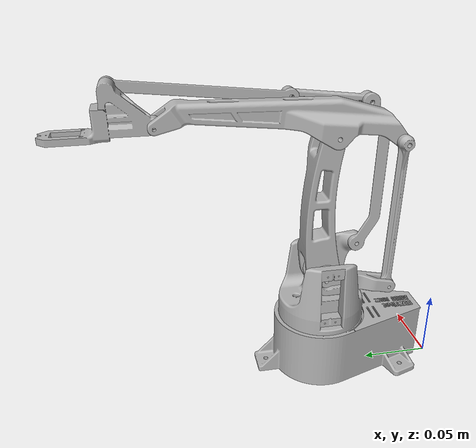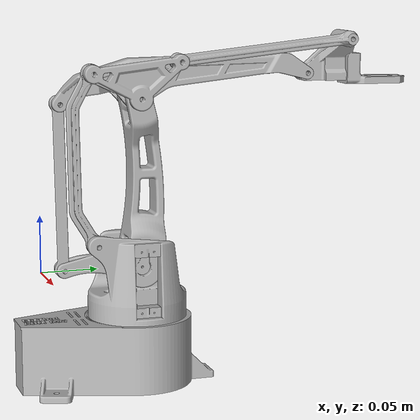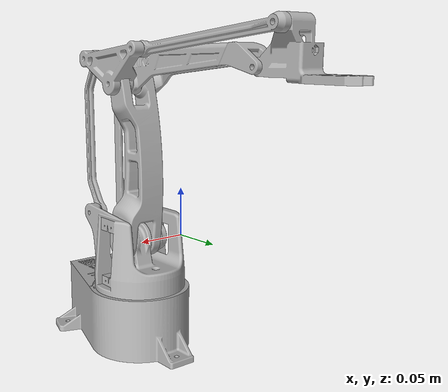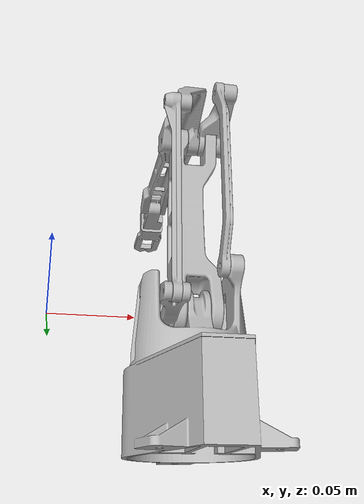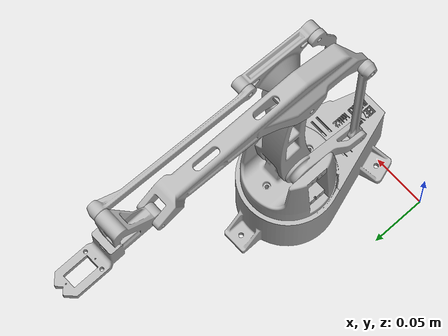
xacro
<?xml version="1.0" ?>
<robot name="RoboEEZYMK2" xmlns:xacro="http://www.ros.org/wiki/xacro">

<xacro:include filename="$(find RoboEEZYMK2_description)/urdf/materials.xacro" />
<xacro:include filename="$(find RoboEEZYMK2_description)/urdf/RoboEEZYMK2.trans" />
<xacro:include filename="$(find RoboEEZYMK2_description)/urdf/RoboEEZYMK2.gazebo" />
<link name="base_link">
  <inertial>
    <origin xyz="0.0949468352036693 0.03432660616485749 -0.04272571120106464" rpy="0 0 0"/>
    <mass value="1.0562548611466858"/>
    <inertia ixx="0.002379" iyy="0.001016" izz="0.002647" ixy="-0.0" iyz="-0.000228" ixz="0.0"/>
  </inertial>
  <visual>
    <origin xyz="0 0 0" rpy="0 0 0"/>
    <geometry>
      <mesh filename="package://RoboEEZYMK2_description/meshes/base_link.stl" scale="0.001 0.001 0.001"/>
    </geometry>
    <material name="silver"/>
  </visual>
  <collision>
    <origin xyz="0 0 0" rpy="0 0 0"/>
    <geometry>
      <mesh filename="package://RoboEEZYMK2_description/meshes/base_link.stl" scale="0.001 0.001 0.001"/>
    </geometry>
  </collision>
</link>

<link name="link_1_1">
  <inertial>
    <origin xyz="0.0011594949209605965 -0.0008907057001873442 0.02046169652517188" rpy="0 0 0"/>
    <mass value="1.1319854911225824"/>
    <inertia ixx="0.000768" iyy="0.00081" izz="0.000895" ixy="2.2e-05" iyz="3.7e-05" ixz="-3.7e-05"/>
  </inertial>
  <visual>
    <origin xyz="-0.094964 -0.059514 0.018538" rpy="0 0 0"/>
    <geometry>
      <mesh filename="package://RoboEEZYMK2_description/meshes/link_1_1.stl" scale="0.001 0.001 0.001"/>
    </geometry>
    <material name="silver"/>
  </visual>
  <collision>
    <origin xyz="-0.094964 -0.059514 0.018538" rpy="0 0 0"/>
    <geometry>
      <mesh filename="package://RoboEEZYMK2_description/meshes/link_1_1.stl" scale="0.001 0.001 0.001"/>
    </geometry>
  </collision>
</link>

<link name="link_2_1">
  <inertial>
    <origin xyz="-0.002295545362061238 0.00376516736121716 0.05910658412541171" rpy="0 0 0"/>
    <mass value="0.5263133802587702"/>
    <inertia ixx="0.001153" iyy="0.001167" izz="9.3e-05" ixy="2e-06" iyz="7e-06" ixz="6e-06"/>
  </inertial>
  <visual>
    <origin xyz="-0.099964 -0.05958 -0.024464" rpy="0 0 0"/>
    <geometry>
      <mesh filename="package://RoboEEZYMK2_description/meshes/link_2_1.stl" scale="0.001 0.001 0.001"/>
    </geometry>
    <material name="silver"/>
  </visual>
  <collision>
    <origin xyz="-0.099964 -0.05958 -0.024464" rpy="0 0 0"/>
    <geometry>
      <mesh filename="package://RoboEEZYMK2_description/meshes/link_2_1.stl" scale="0.001 0.001 0.001"/>
    </geometry>
  </collision>
</link>

<link name="link_3_1">
  <inertial>
    <origin xyz="0.0010380580983578303 0.035238918667005764 0.016176972781156457" rpy="0 0 0"/>
    <mass value="0.30760850779314325"/>
    <inertia ixx="0.0011" iyy="5.4e-05" izz="0.001087" ixy="-3.4e-05" iyz="-0.000102" ixz="-7e-06"/>
  </inertial>
  <visual>
    <origin xyz="-0.089088 -0.057436 -0.159445" rpy="0 0 0"/>
    <geometry>
      <mesh filename="package://RoboEEZYMK2_description/meshes/link_3_1.stl" scale="0.001 0.001 0.001"/>
    </geometry>
    <material name="silver"/>
  </visual>
  <collision>
    <origin xyz="-0.089088 -0.057436 -0.159445" rpy="0 0 0"/>
    <geometry>
      <mesh filename="package://RoboEEZYMK2_description/meshes/link_3_1.stl" scale="0.001 0.001 0.001"/>
    </geometry>
  </collision>
</link>

<link name="link_3_2_1">
  <inertial>
    <origin xyz="-0.0026793419620067954 0.0009712880335818083 -0.061109310728380606" rpy="0 0 0"/>
    <mass value="0.046801413746647286"/>
    <inertia ixx="0.000106" iyy="0.000106" izz="1e-06" ixy="-0.0" iyz="2e-06" ixz="1e-06"/>
  </inertial>
  <visual>
    <origin xyz="-0.078388 -0.000738 -0.153575" rpy="0 0 0"/>
    <geometry>
      <mesh filename="package://RoboEEZYMK2_description/meshes/link_3_2_1.stl" scale="0.001 0.001 0.001"/>
    </geometry>
    <material name="silver"/>
  </visual>
  <collision>
    <origin xyz="-0.078388 -0.000738 -0.153575" rpy="0 0 0"/>
    <geometry>
      <mesh filename="package://RoboEEZYMK2_description/meshes/link_3_2_1.stl" scale="0.001 0.001 0.001"/>
    </geometry>
  </collision>
</link>

<link name="link_3_1_1">
  <inertial>
    <origin xyz="0.00256705697527293 0.03640653266630167 0.004340243782947648" rpy="0 0 0"/>
    <mass value="0.09520251549072208"/>
    <inertia ixx="4.3e-05" iyy="5e-06" izz="4.1e-05" ixy="-3e-06" iyz="-3e-06" ixz="-0.0"/>
  </inertial>
  <visual>
    <origin xyz="-0.075639 -0.002883 -0.018592" rpy="0 0 0"/>
    <geometry>
      <mesh filename="package://RoboEEZYMK2_description/meshes/link_3_1_1.stl" scale="0.001 0.001 0.001"/>
    </geometry>
    <material name="silver"/>
  </visual>
  <collision>
    <origin xyz="-0.075639 -0.002883 -0.018592" rpy="0 0 0"/>
    <geometry>
      <mesh filename="package://RoboEEZYMK2_description/meshes/link_3_1_1.stl" scale="0.001 0.001 0.001"/>
    </geometry>
  </collision>
</link>

<link name="link_4_1">
  <inertial>
    <origin xyz="0.0028346301169774046 0.03370186835185668 0.0049897854060559355" rpy="0 0 0"/>
    <mass value="0.17584751131279172"/>
    <inertia ixx="8.8e-05" iyy="3.1e-05" izz="7.1e-05" ixy="-2e-06" iyz="1e-05" ixz="-2e-06"/>
  </inertial>
  <visual>
    <origin xyz="-0.092338 -0.203654 -0.174581" rpy="0 0 0"/>
    <geometry>
      <mesh filename="package://RoboEEZYMK2_description/meshes/link_4_1.stl" scale="0.001 0.001 0.001"/>
    </geometry>
    <material name="silver"/>
  </visual>
  <collision>
    <origin xyz="-0.092338 -0.203654 -0.174581" rpy="0 0 0"/>
    <geometry>
      <mesh filename="package://RoboEEZYMK2_description/meshes/link_4_1.stl" scale="0.001 0.001 0.001"/>
    </geometry>
  </collision>
</link>

<link name="link_4_2_1">
  <inertial>
    <origin xyz="0.003984579932493459 -0.0022747829512749715 0.014658718922142294" rpy="0 0 0"/>
    <mass value="0.14634489899378644"/>
    <inertia ixx="5.8e-05" iyy="1.5e-05" izz="5e-05" ixy="0.0" iyz="-3e-06" ixz="-2e-06"/>
  </inertial>
  <visual>
    <origin xyz="-0.112338 -0.057435 -0.159445" rpy="0 0 0"/>
    <geometry>
      <mesh filename="package://RoboEEZYMK2_description/meshes/link_4_2_1.stl" scale="0.001 0.001 0.001"/>
    </geometry>
    <material name="silver"/>
  </visual>
  <collision>
    <origin xyz="-0.112338 -0.057435 -0.159445" rpy="0 0 0"/>
    <geometry>
      <mesh filename="package://RoboEEZYMK2_description/meshes/link_4_2_1.stl" scale="0.001 0.001 0.001"/>
    </geometry>
  </collision>
</link>

<link name="link_4_1_1">
  <inertial>
    <origin xyz="-0.002856293640993171 0.07905893175803083 0.008044095101420401" rpy="0 0 0"/>
    <mass value="0.049461173306686305"/>
    <inertia ixx="0.00013" iyy="2e-06" izz="0.000128" ixy="-1e-06" iyz="-1.3e-05" ixz="-0.0"/>
  </inertial>
  <visual>
    <origin xyz="-0.113838 -0.090053 -0.187464" rpy="0 0 0"/>
    <geometry>
      <mesh filename="package://RoboEEZYMK2_description/meshes/link_4_1_1.stl" scale="0.001 0.001 0.001"/>
    </geometry>
    <material name="silver"/>
  </visual>
  <collision>
    <origin xyz="-0.113838 -0.090053 -0.187464" rpy="0 0 0"/>
    <geometry>
      <mesh filename="package://RoboEEZYMK2_description/meshes/link_4_1_1.stl" scale="0.001 0.001 0.001"/>
    </geometry>
  </collision>
</link>

<link name="link_4_3_1">
  <inertial>
    <origin xyz="-0.003251166973614217 -0.008226531218529688 -0.0676474719131632" rpy="0 0 0"/>
    <mass value="0.05180294690053012"/>
    <inertia ixx="0.000118" iyy="0.000116" izz="3e-06" ixy="-0.0" iyz="2e-06" ixz="-0.0"/>
  </inertial>
  <visual>
    <origin xyz="-0.113838 -0.019483 -0.17966" rpy="0 0 0"/>
    <geometry>
      <mesh filename="package://RoboEEZYMK2_description/meshes/link_4_3_1.stl" scale="0.001 0.001 0.001"/>
    </geometry>
    <material name="silver"/>
  </visual>
  <collision>
    <origin xyz="-0.113838 -0.019483 -0.17966" rpy="0 0 0"/>
    <geometry>
      <mesh filename="package://RoboEEZYMK2_description/meshes/link_4_3_1.stl" scale="0.001 0.001 0.001"/>
    </geometry>
  </collision>
</link>

<joint name="Joint_1" type="revolute">
  <origin xyz="0.094964 0.059514 -0.018538" rpy="0 0 0"/>
  <parent link="base_link"/>
  <child link="link_1_1"/>
  <axis xyz="0.0 -0.001569 -0.999999"/>
  <limit upper="1.570796" lower="-1.570796" effort="100" velocity="100"/>
</joint>

<joint name="Joint_2" type="revolute">
  <origin xyz="0.005 6.6e-05 0.043002" rpy="0 0 0"/>
  <parent link="link_1_1"/>
  <child link="link_2_1"/>
  <axis xyz="1.0 0.0 2e-06"/>
  <limit upper="1.570796" lower="-1.570796" effort="100" velocity="100"/>
</joint>

<joint name="Joint_3" type="revolute">
  <origin xyz="-0.010876 -0.002144 0.134981" rpy="0 0 0"/>
  <parent link="link_2_1"/>
  <child link="link_3_1"/>
  <axis xyz="-1.0 -0.0 -2e-06"/>
  <limit upper="1.047198" lower="-0.261799" effort="100" velocity="100"/>
</joint>

<joint name="Joint_3.1" type="continuous">
  <origin xyz="-0.0107 -0.056698 -0.00587" rpy="0 0 0"/>
  <parent link="link_3_1"/>
  <child link="link_3_2_1"/>
  <axis xyz="1.0 0.0 2e-06"/>
</joint>

<joint name="Joint_3.2" type="continuous">
  <origin xyz="-0.002749 0.002145 -0.134983" rpy="0 0 0"/>
  <parent link="link_3_2_1"/>
  <child link="link_3_1_1"/>
  <axis xyz="-1.0 -0.0 -2e-06"/>
</joint>

<joint name="Joint_4" type="continuous">
  <origin xyz="0.00325 0.146218 0.015136" rpy="0 0 0"/>
  <parent link="link_3_1"/>
  <child link="link_4_1"/>
  <axis xyz="1.0 0.0 2e-06"/>
</joint>

<joint name="Joint_4.1" type="continuous">
  <origin xyz="0.012374 -0.002145 0.134981" rpy="0 0 0"/>
  <parent link="link_2_1"/>
  <child link="link_4_2_1"/>
  <axis xyz="-1.0 -0.0 -2e-06"/>
</joint>

<joint name="Joint_4.2" type="continuous">
  <origin xyz="0.0015 0.032618 0.028019" rpy="0 0 0"/>
  <parent link="link_4_2_1"/>
  <child link="link_4_1_1"/>
  <axis xyz="1.0 0.0 2e-06"/>
</joint>

<joint name="Joint_4.3" type="continuous">
  <origin xyz="0.0015 -0.037952 0.020215" rpy="0 0 0"/>
  <parent link="link_4_2_1"/>
  <child link="link_4_3_1"/>
  <axis xyz="1.0 0.0 2e-06"/>
</joint>

</robot>

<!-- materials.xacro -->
<robot name="RoboEEZYMK2" xmlns:xacro="http://www.ros.org/wiki/xacro" >

<material name="silver">
  <color rgba="0.700 0.700 0.700 1.000"/>
</material>

</robot>
